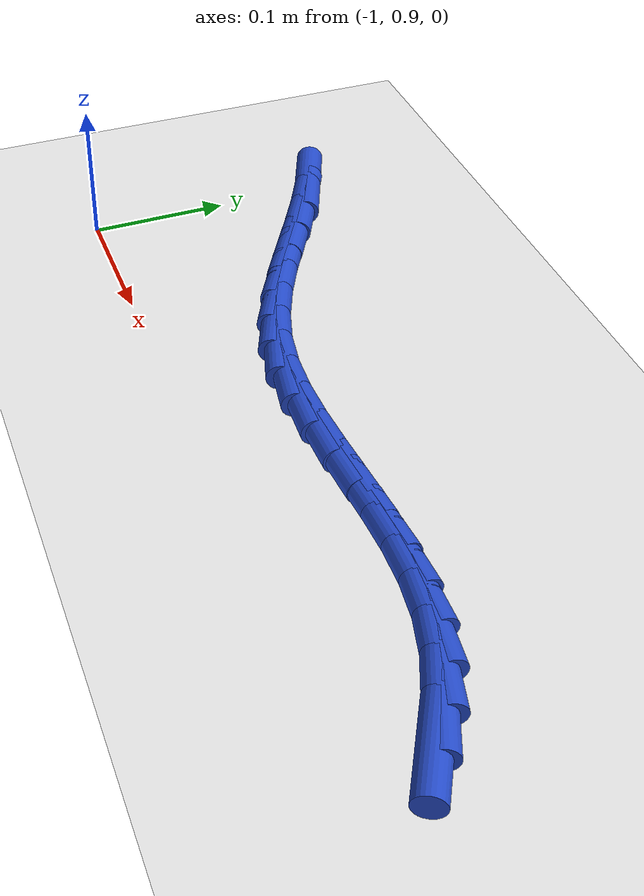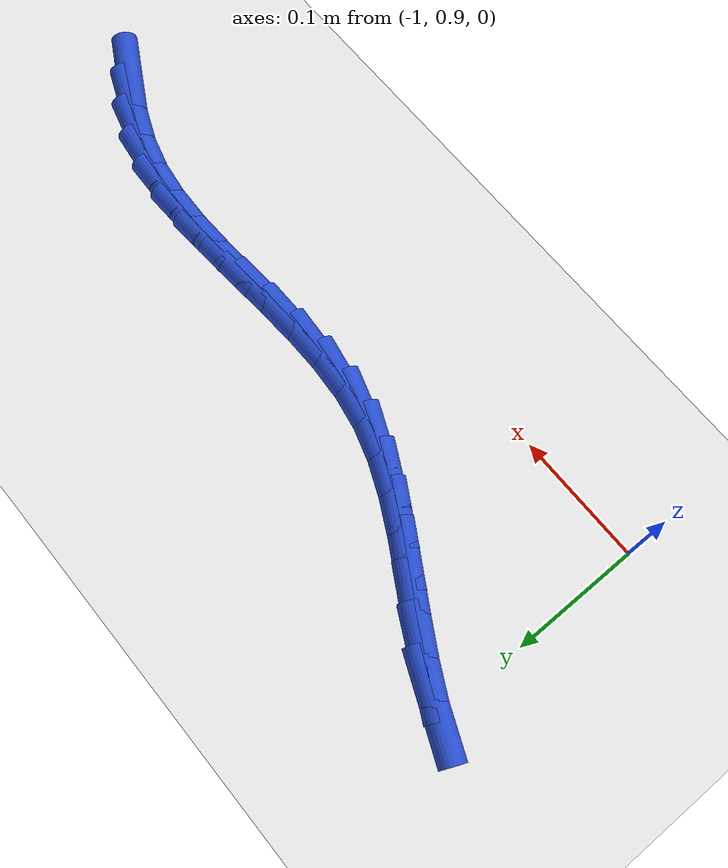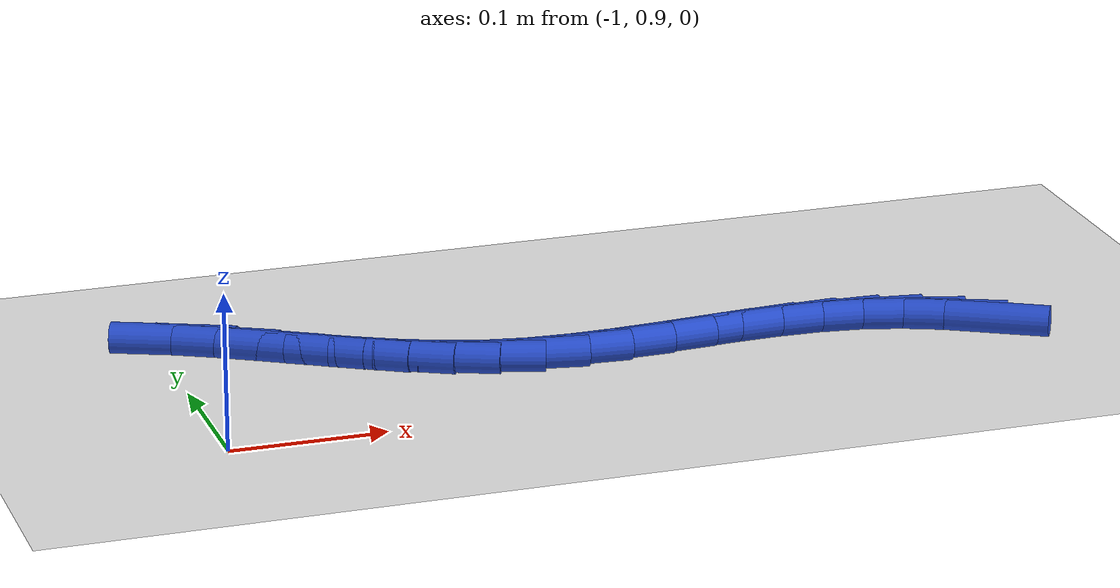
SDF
<sdf version="1.6">
 <world name="default">
  <model name="ground_plane">
   <static>1</static>
   <link name="link">
    <collision name="collision">
     <geometry><plane><normal>0 0 1</normal><size>100 100</size></plane></geometry>
     <surface><friction><ode><mu>100</mu><mu2>50</mu2></ode></friction></surface>
    </collision>
    <visual name="visual">
     <cast_shadows>0</cast_shadows>
     <geometry><plane><normal>0 0 1</normal><size>100 100</size></plane></geometry>
     <material>
      <script><uri>file://media/materials/scripts/gazebo.material</uri><name>Gazebo/WhiteGlow</name></script>
     </material>
    </visual>
   </link>
  </model>
  <model name="line">
   <link name="link_39">
    <pose>-0.48958731858069937 0.945566192132917 0.01 0 1.57 -0.5149794903217858</pose>
    <collision name="collision">
     <geometry><cylinder><radius>0.01</radius><length>0.08</length></cylinder></geometry>
    </collision>
    <visual name="visual">
     <material>
      <script><name>Gazebo/Blue</name><uri>file://media/materials/scripts/gazebo.material</uri></script>
     </material>
     <geometry><cylinder><radius>0.01</radius><length>0.08</length></cylinder></geometry>
    </visual>
   </link>
   <link name="link_40">
    <pose>-0.5133111493636153 0.9589918522984421 0.01 0 1.57 -0.40009081260892787</pose>
    <collision name="collision">
     <geometry><cylinder><radius>0.01</radius><length>0.08</length></cylinder></geometry>
    </collision>
    <visual name="visual">
     <material>
      <script><name>Gazebo/Blue</name><uri>file://media/materials/scripts/gazebo.material</uri></script>
     </material>
     <geometry><cylinder><radius>0.01</radius><length>0.08</length></cylinder></geometry>
    </visual>
   </link>
   <link name="link_41">
    <pose>-0.5380097580149041 0.9694369005307297 0.01 0 1.57 -0.26600445044403476</pose>
    <collision name="collision">
     <geometry><cylinder><radius>0.01</radius><length>0.08</length></cylinder></geometry>
    </collision>
    <visual name="visual">
     <material>
      <script><name>Gazebo/Blue</name><uri>file://media/materials/scripts/gazebo.material</uri></script>
     </material>
     <geometry><cylinder><radius>0.01</radius><length>0.08</length></cylinder></geometry>
    </visual>
   </link>
   <link name="link_42">
    <pose>-0.5637833074891947 0.9764591946957958 0.01 0 1.57 -0.13315972044538413</pose>
    <collision name="collision">
     <geometry><cylinder><radius>0.01</radius><length>0.08</length></cylinder></geometry>
    </collision>
    <visual name="visual">
     <material>
      <script><name>Gazebo/Blue</name><uri>file://media/materials/scripts/gazebo.material</uri></script>
     </material>
     <geometry><cylinder><radius>0.01</radius><length>0.08</length></cylinder></geometry>
    </visual>
   </link>
   <link name="link_43">
    <pose>-0.5906164443043096 0.9800535573421647 0.01 0 1.57 -0.03276809139449488</pose>
    <collision name="collision">
     <geometry><cylinder><radius>0.01</radius><length>0.08</length></cylinder></geometry>
    </collision>
    <visual name="visual">
     <material>
      <script><name>Gazebo/Blue</name><uri>file://media/materials/scripts/gazebo.material</uri></script>
     </material>
     <geometry><cylinder><radius>0.01</radius><length>0.08</length></cylinder></geometry>
    </visual>
   </link>
   <link name="link_44">
    <pose>-0.6182965762141033 0.9809609072126257 0.01 0 1.57 0.03411931877565175</pose>
    <collision name="collision">
     <geometry><cylinder><radius>0.01</radius><length>0.08</length></cylinder></geometry>
    </collision>
    <visual name="visual">
     <material>
      <script><name>Gazebo/Blue</name><uri>file://media/materials/scripts/gazebo.material</uri></script>
     </material>
     <geometry><cylinder><radius>0.01</radius><length>0.08</length></cylinder></geometry>
    </visual>
   </link>
   <link name="link_45">
    <pose>-0.6465918245744147 0.9799951178174311 0.01 0 1.57 0.0704953344070532</pose>
    <collision name="collision">
     <geometry><cylinder><radius>0.01</radius><length>0.08</length></cylinder></geometry>
    </collision>
    <visual name="visual">
     <material>
      <script><name>Gazebo/Blue</name><uri>file://media/materials/scripts/gazebo.material</uri></script>
     </material>
     <geometry><cylinder><radius>0.01</radius><length>0.08</length></cylinder></geometry>
    </visual>
   </link>
   <link name="link_46">
    <pose>-0.6752703107410826 0.9779700626668336 0.01 0 1.57 0.07859115850356967</pose>
    <collision name="collision">
     <geometry><cylinder><radius>0.01</radius><length>0.08</length></cylinder></geometry>
    </collision>
    <visual name="visual">
     <material>
      <script><name>Gazebo/Blue</name><uri>file://media/materials/scripts/gazebo.material</uri></script>
     </material>
     <geometry><cylinder><radius>0.01</radius><length>0.08</length></cylinder></geometry>
    </visual>
   </link>
   <link name="link_47">
    <pose>-0.7041001560699469 0.9756996152710861 0.01 0 1.57 0.05913119620823311</pose>
    <collision name="collision">
     <geometry><cylinder><radius>0.01</radius><length>0.08</length></cylinder></geometry>
    </collision>
    <visual name="visual">
     <material>
      <script><name>Gazebo/Blue</name><uri>file://media/materials/scripts/gazebo.material</uri></script>
     </material>
     <geometry><cylinder><radius>0.01</radius><length>0.08</length></cylinder></geometry>
    </visual>
   </link>
   <link name="link_48">
    <pose>-0.7328494819168458 0.9739976491404405 0.01 0 1.57 0.011238833585152043</pose>
    <collision name="collision">
     <geometry><cylinder><radius>0.01</radius><length>0.08</length></cylinder></geometry>
    </collision>
    <visual name="visual">
     <material>
      <script><name>Gazebo/Blue</name><uri>file://media/materials/scripts/gazebo.material</uri></script>
     </material>
     <geometry><cylinder><radius>0.01</radius><length>0.08</length></cylinder></geometry>
    </visual>
   </link>
   <link name="link_49">
    <pose>-0.761286409637619 0.9736780377851499 0.01 0 1.57 -0.06717873598398837</pose>
    <collision name="collision">
     <geometry><cylinder><radius>0.01</radius><length>0.08</length></cylinder></geometry>
    </collision>
    <visual name="visual">
     <material>
      <script><name>Gazebo/Blue</name><uri>file://media/materials/scripts/gazebo.material</uri></script>
     </material>
     <geometry><cylinder><radius>0.01</radius><length>0.08</length></cylinder></geometry>
    </visual>
   </link>
   <link name="link_50">
    <pose>-0.7891790605881052 0.9755546547154668 0.01 0 1.57 -0.17827787246602103</pose>
    <collision name="collision">
     <geometry><cylinder><radius>0.01</radius><length>0.08</length></cylinder></geometry>
    </collision>
    <visual name="visual">
     <material>
      <script><name>Gazebo/Blue</name><uri>file://media/materials/scripts/gazebo.material</uri></script>
     </material>
     <geometry><cylinder><radius>0.01</radius><length>0.08</length></cylinder></geometry>
    </visual>
   </link>
   <link name="link_51">
    <pose>-0.8162957056627235 0.9804408282767033 0.01 0 1.57 -0.3075011686084976</pose>
    <collision name="collision">
     <geometry><cylinder><radius>0.01</radius><length>0.08</length></cylinder></geometry>
    </collision>
    <visual name="visual">
     <material>
      <script><name>Gazebo/Blue</name><uri>file://media/materials/scripts/gazebo.material</uri></script>
     </material>
     <geometry><cylinder><radius>0.01</radius><length>0.08</length></cylinder></geometry>
    </visual>
   </link>
   <link name="link_52">
    <pose>-0.8425099682533691 0.9887658087531318 0.01 0 1.57 -0.4120987300900679</pose>
    <collision name="collision">
     <geometry><cylinder><radius>0.01</radius><length>0.08</length></cylinder></geometry>
    </collision>
    <visual name="visual">
     <material>
      <script><name>Gazebo/Blue</name><uri>file://media/materials/scripts/gazebo.material</uri></script>
     </material>
     <geometry><cylinder><radius>0.01</radius><length>0.08</length></cylinder></geometry>
    </visual>
   </link>
   <link name="link_53">
    <pose>-0.8679854048412419 0.9999018526088369 0.01 0 1.57 -0.4847206639089768</pose>
    <collision name="collision">
     <geometry><cylinder><radius>0.01</radius><length>0.08</length></cylinder></geometry>
    </collision>
    <visual name="visual">
     <material>
      <script><name>Gazebo/Blue</name><uri>file://media/materials/scripts/gazebo.material</uri></script>
     </material>
     <geometry><cylinder><radius>0.01</radius><length>0.08</length></cylinder></geometry>
    </visual>
   </link>
   <link name="link_54">
    <pose>-0.8929350157474801 1.013040961500204 0.01 0 1.57 -0.5269446163942291</pose>
    <collision name="collision">
     <geometry><cylinder><radius>0.01</radius><length>0.08</length></cylinder></geometry>
    </collision>
    <visual name="visual">
     <material>
      <script><name>Gazebo/Blue</name><uri>file://media/materials/scripts/gazebo.material</uri></script>
     </material>
     <geometry><cylinder><radius>0.01</radius><length>0.08</length></cylinder></geometry>
    </visual>
   </link>
   <link name="link_55">
    <pose>-0.9175718012932202 1.0273751370836186 0.01 0 1.57 -0.5403915596001757</pose>
    <collision name="collision">
     <geometry><cylinder><radius>0.01</radius><length>0.08</length></cylinder></geometry>
    </collision>
    <visual name="visual">
     <material>
      <script><name>Gazebo/Blue</name><uri>file://media/materials/scripts/gazebo.material</uri></script>
     </material>
     <geometry><cylinder><radius>0.01</radius><length>0.08</length></cylinder></geometry>
    </visual>
   </link>
   <link name="link_56">
    <pose>-0.9421087617995997 1.0420963810154649 0.01 0 1.57 -0.5256819949936712</pose>
    <collision name="collision">
     <geometry><cylinder><radius>0.01</radius><length>0.08</length></cylinder></geometry>
    </collision>
    <visual name="visual">
     <material>
      <script><name>Gazebo/Blue</name><uri>file://media/materials/scripts/gazebo.material</uri></script>
     </material>
     <geometry><cylinder><radius>0.01</radius><length>0.08</length></cylinder></geometry>
    </visual>
   </link>
   <link name="link_57">
    <pose>-0.9667588975877552 1.0563966949521282 0.01 0 1.57 -0.4821536778887646</pose>
    <collision name="collision">
     <geometry><cylinder><radius>0.01</radius><length>0.08</length></cylinder></geometry>
    </collision>
    <visual name="visual">
     <material>
      <script><name>Gazebo/Blue</name><uri>file://media/materials/scripts/gazebo.material</uri></script>
     </material>
     <geometry><cylinder><radius>0.01</radius><length>0.08</length></cylinder></geometry>
    </visual>
   </link>
   <link name="link_58">
    <pose>-0.9917352089788245 1.0694680805499939 0.01 0 1.57 -0.40817336061624704</pose>
    <collision name="collision">
     <geometry><cylinder><radius>0.01</radius><length>0.08</length></cylinder></geometry>
    </collision>
    <visual name="visual">
     <material>
      <script><name>Gazebo/Blue</name><uri>file://media/materials/scripts/gazebo.material</uri></script>
     </material>
     <geometry><cylinder><radius>0.01</radius><length>0.08</length></cylinder></geometry>
    </visual>
   </link>
  </model>
 </world>
</sdf>
